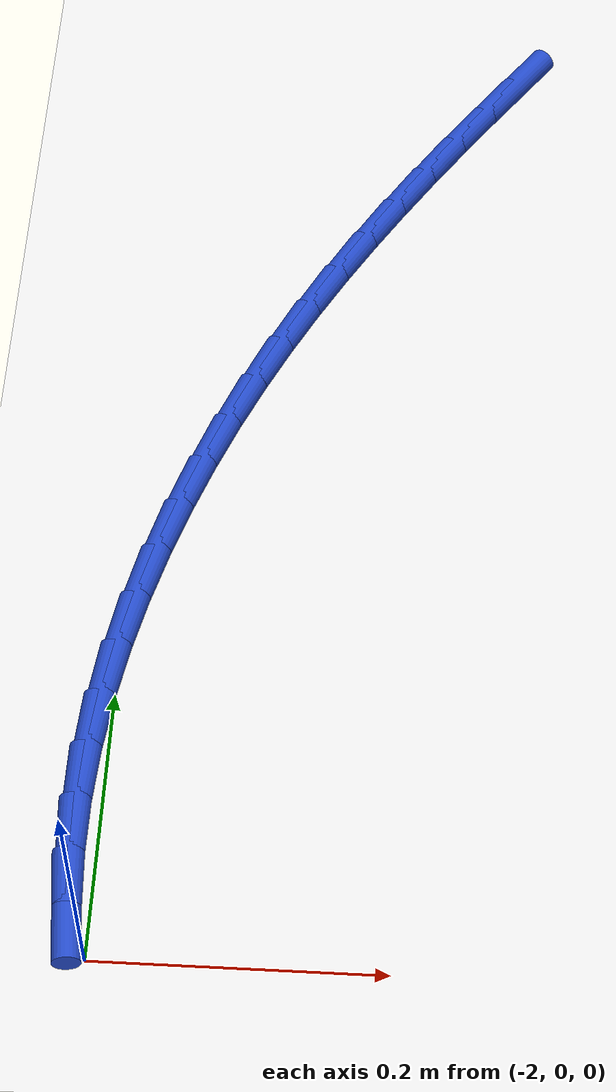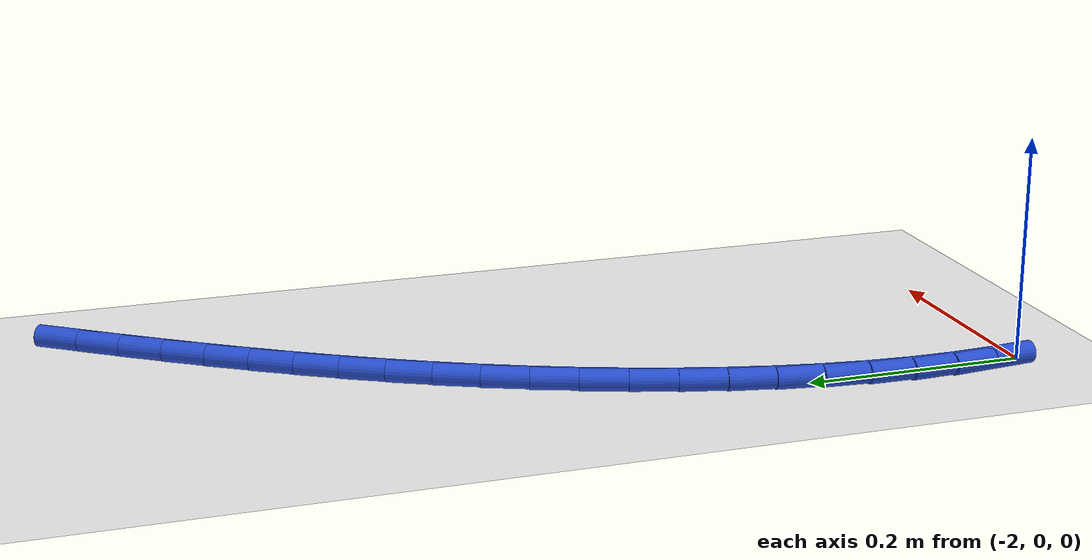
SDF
<sdf version="1.6">
 <world name="default">
  <model name="ground_plane">
   <static>1</static>
   <link name="link">
    <collision name="collision">
     <geometry><plane><normal>0 0 1</normal><size>100 100</size></plane></geometry>
     <surface><friction><ode><mu>100</mu><mu2>50</mu2></ode></friction></surface>
    </collision>
    <visual name="visual">
     <cast_shadows>0</cast_shadows>
     <geometry><plane><normal>0 0 1</normal><size>100 100</size></plane></geometry>
     <material>
      <script><uri>file://media/materials/scripts/gazebo.material</uri><name>Gazebo/WhiteGlow</name></script>
     </material>
    </visual>
   </link>
  </model>
  <model name="line">
   <link name="link_59">
    <pose>-1.7266454813526415 0.785578040407122 0.01 0 1.57 0.9463329965080772</pose>
    <collision name="collision">
     <geometry><cylinder><radius>0.01</radius><length>0.08</length></cylinder></geometry>
    </collision>
    <visual name="visual">
     <material>
      <script><name>Gazebo/Blue</name><uri>file://media/materials/scripts/gazebo.material</uri></script>
     </material>
     <geometry><cylinder><radius>0.01</radius><length>0.08</length></cylinder></geometry>
    </visual>
   </link>
   <link name="link_60">
    <pose>-1.7512228388067657 0.7514744967652388 0.01 0 1.57 0.9586693720810079</pose>
    <collision name="collision">
     <geometry><cylinder><radius>0.01</radius><length>0.08</length></cylinder></geometry>
    </collision>
    <visual name="visual">
     <material>
      <script><name>Gazebo/Blue</name><uri>file://media/materials/scripts/gazebo.material</uri></script>
     </material>
     <geometry><cylinder><radius>0.01</radius><length>0.08</length></cylinder></geometry>
    </visual>
   </link>
   <link name="link_61">
    <pose>-1.7751911353999055 0.7173359778144072 0.01 0 1.57 0.9732770989073142</pose>
    <collision name="collision">
     <geometry><cylinder><radius>0.01</radius><length>0.08</length></cylinder></geometry>
    </collision>
    <visual name="visual">
     <material>
      <script><name>Gazebo/Blue</name><uri>file://media/materials/scripts/gazebo.material</uri></script>
     </material>
     <geometry><cylinder><radius>0.01</radius><length>0.08</length></cylinder></geometry>
    </visual>
   </link>
   <link name="link_62">
    <pose>-1.798494183957913 0.6830920230691159 0.01 0 1.57 0.990638955249911</pose>
    <collision name="collision">
     <geometry><cylinder><radius>0.01</radius><length>0.08</length></cylinder></geometry>
    </collision>
    <visual name="visual">
     <material>
      <script><name>Gazebo/Blue</name><uri>file://media/materials/scripts/gazebo.material</uri></script>
     </material>
     <geometry><cylinder><radius>0.01</radius><length>0.08</length></cylinder></geometry>
    </visual>
   </link>
   <link name="link_63">
    <pose>-1.8210668017229703 0.6486506967566651 0.01 0 1.57 1.010741564695442</pose>
    <collision name="collision">
     <geometry><cylinder><radius>0.01</radius><length>0.08</length></cylinder></geometry>
    </collision>
    <visual name="visual">
     <material>
      <script><name>Gazebo/Blue</name><uri>file://media/materials/scripts/gazebo.material</uri></script>
     </material>
     <geometry><cylinder><radius>0.01</radius><length>0.08</length></cylinder></geometry>
    </visual>
   </link>
   <link name="link_64">
    <pose>-1.842843805937259 0.6139200631043558 0.01 0 1.57 1.0335432675178449</pose>
    <collision name="collision">
     <geometry><cylinder><radius>0.01</radius><length>0.08</length></cylinder></geometry>
    </collision>
    <visual name="visual">
     <material>
      <script><name>Gazebo/Blue</name><uri>file://media/materials/scripts/gazebo.material</uri></script>
     </material>
     <geometry><cylinder><radius>0.01</radius><length>0.08</length></cylinder></geometry>
    </visual>
   </link>
   <link name="link_65">
    <pose>-1.86376001384296 0.578808186339488 0.01 0 1.57 1.0589698647585044</pose>
    <collision name="collision">
     <geometry><cylinder><radius>0.01</radius><length>0.08</length></cylinder></geometry>
    </collision>
    <visual name="visual">
     <material>
      <script><name>Gazebo/Blue</name><uri>file://media/materials/scripts/gazebo.material</uri></script>
     </material>
     <geometry><cylinder><radius>0.01</radius><length>0.08</length></cylinder></geometry>
    </visual>
   </link>
   <link name="link_66">
    <pose>-1.8837502426822552 0.5432231306893622 0.01 0 1.57 1.086910783392453</pose>
    <collision name="collision">
     <geometry><cylinder><radius>0.01</radius><length>0.08</length></cylinder></geometry>
    </collision>
    <visual name="visual">
     <material>
      <script><name>Gazebo/Blue</name><uri>file://media/materials/scripts/gazebo.material</uri></script>
     </material>
     <geometry><cylinder><radius>0.01</radius><length>0.08</length></cylinder></geometry>
    </visual>
   </link>
   <link name="link_67">
    <pose>-1.9027493096973278 0.5070729603812798 0.01 0 1.57 1.1172161411557868</pose>
    <collision name="collision">
     <geometry><cylinder><radius>0.01</radius><length>0.08</length></cylinder></geometry>
    </collision>
    <visual name="visual">
     <material>
      <script><name>Gazebo/Blue</name><uri>file://media/materials/scripts/gazebo.material</uri></script>
     </material>
     <geometry><cylinder><radius>0.01</radius><length>0.08</length></cylinder></geometry>
    </visual>
   </link>
   <link name="link_68">
    <pose>-1.920692032130357 0.4702657396425401 0.01 0 1.57 1.149695234886255</pose>
    <collision name="collision">
     <geometry><cylinder><radius>0.01</radius><length>0.08</length></cylinder></geometry>
    </collision>
    <visual name="visual">
     <material>
      <script><name>Gazebo/Blue</name><uri>file://media/materials/scripts/gazebo.material</uri></script>
     </material>
     <geometry><cylinder><radius>0.01</radius><length>0.08</length></cylinder></geometry>
    </visual>
   </link>
   <link name="link_69">
    <pose>-1.9375132272235256 0.43270953270044465 0.01 0 1.57 1.1841154487596448</pose>
    <collision name="collision">
     <geometry><cylinder><radius>0.01</radius><length>0.08</length></cylinder></geometry>
    </collision>
    <visual name="visual">
     <material>
      <script><name>Gazebo/Blue</name><uri>file://media/materials/scripts/gazebo.material</uri></script>
     </material>
     <geometry><cylinder><radius>0.01</radius><length>0.08</length></cylinder></geometry>
    </visual>
   </link>
   <link name="link_70">
    <pose>-1.9531452850895212 0.39431853015060836 0.01 0 1.57 1.2203140845607783</pose>
    <collision name="collision">
     <geometry><cylinder><radius>0.01</radius><length>0.08</length></cylinder></geometry>
    </collision>
    <visual name="visual">
     <material>
      <script><name>Gazebo/Blue</name><uri>file://media/materials/scripts/gazebo.material</uri></script>
     </material>
     <geometry><cylinder><radius>0.01</radius><length>0.08</length></cylinder></geometry>
    </visual>
   </link>
   <link name="link_71">
    <pose>-1.9674692486547496 0.35513652909536164 0.01 0 1.57 1.258585240429816</pose>
    <collision name="collision">
     <geometry><cylinder><radius>0.01</radius><length>0.08</length></cylinder></geometry>
    </collision>
    <visual name="visual">
     <material>
      <script><name>Gazebo/Blue</name><uri>file://media/materials/scripts/gazebo.material</uri></script>
     </material>
     <geometry><cylinder><radius>0.01</radius><length>0.08</length></cylinder></geometry>
    </visual>
   </link>
   <link name="link_72">
    <pose>-1.9803171840982203 0.3153309498693828 0.01 0 1.57 1.2993981332020452</pose>
    <collision name="collision">
     <geometry><cylinder><radius>0.01</radius><length>0.08</length></cylinder></geometry>
    </collision>
    <visual name="visual">
     <material>
      <script><name>Gazebo/Blue</name><uri>file://media/materials/scripts/gazebo.material</uri></script>
     </material>
     <geometry><cylinder><radius>0.01</radius><length>0.08</length></cylinder></geometry>
    </visual>
   </link>
   <link name="link_73">
    <pose>-1.991519204889255 0.2750741416827151 0.01 0 1.57 1.3432520740090117</pose>
    <collision name="collision">
     <geometry><cylinder><radius>0.01</radius><length>0.08</length></cylinder></geometry>
    </collision>
    <visual name="visual">
     <material>
      <script><name>Gazebo/Blue</name><uri>file://media/materials/scripts/gazebo.material</uri></script>
     </material>
     <geometry><cylinder><radius>0.01</radius><length>0.08</length></cylinder></geometry>
    </visual>
   </link>
   <link name="link_74">
    <pose>-2.0009054244971742 0.23453845374540314 0.01 0 1.57 1.3906799498544182</pose>
    <collision name="collision">
     <geometry><cylinder><radius>0.01</radius><length>0.08</length></cylinder></geometry>
    </collision>
    <visual name="visual">
     <material>
      <script><name>Gazebo/Blue</name><uri>file://media/materials/scripts/gazebo.material</uri></script>
     </material>
     <geometry><cylinder><radius>0.01</radius><length>0.08</length></cylinder></geometry>
    </visual>
   </link>
   <link name="link_75">
    <pose>-2.0083059563912977 0.19389623526749064 0.01 0 1.57 1.442247827732246</pose>
    <collision name="collision">
     <geometry><cylinder><radius>0.01</radius><length>0.08</length></cylinder></geometry>
    </collision>
    <visual name="visual">
     <material>
      <script><name>Gazebo/Blue</name><uri>file://media/materials/scripts/gazebo.material</uri></script>
     </material>
     <geometry><cylinder><radius>0.01</radius><length>0.08</length></cylinder></geometry>
    </visual>
   </link>
   <link name="link_76">
    <pose>-2.0135509140409464 0.1533198354590212 0.01 0 1.57 1.498546873659196</pose>
    <collision name="collision">
     <geometry><cylinder><radius>0.01</radius><length>0.08</length></cylinder></geometry>
    </collision>
    <visual name="visual">
     <material>
      <script><name>Gazebo/Blue</name><uri>file://media/materials/scripts/gazebo.material</uri></script>
     </material>
     <geometry><cylinder><radius>0.01</radius><length>0.08</length></cylinder></geometry>
    </visual>
   </link>
   <link name="link_77">
    <pose>-2.0164704109154417 0.11298160353003958 0.01 0 1.57 1.5600231100559157</pose>
    <collision name="collision">
     <geometry><cylinder><radius>0.01</radius><length>0.08</length></cylinder></geometry>
    </collision>
    <visual name="visual">
     <material>
      <script><name>Gazebo/Blue</name><uri>file://media/materials/scripts/gazebo.material</uri></script>
     </material>
     <geometry><cylinder><radius>0.01</radius><length>0.08</length></cylinder></geometry>
    </visual>
   </link>
   <link name="link_78">
    <pose>-2.016900619123803 0.07305002366688354 0.01 0 1.57 -1.5200040323658288</pose>
    <collision name="collision">
     <geometry><cylinder><radius>0.01</radius><length>0.08</length></cylinder></geometry>
    </collision>
    <visual name="visual">
     <material>
      <script><name>Gazebo/Blue</name><uri>file://media/materials/scripts/gazebo.material</uri></script>
     </material>
     <geometry><cylinder><radius>0.01</radius><length>0.08</length></cylinder></geometry>
    </visual>
   </link>
   <link name="link_79">
    <pose>-2.014892915125048 0.03355629347750475 0.01 0 1.57 -1.4659188262807188</pose>
    <collision name="collision">
     <geometry><cylinder><radius>0.01</radius><length>0.08</length></cylinder></geometry>
    </collision>
    <visual name="visual">
     <material>
      <script><name>Gazebo/Blue</name><uri>file://media/materials/scripts/gazebo.material</uri></script>
     </material>
     <geometry><cylinder><radius>0.01</radius><length>0.08</length></cylinder></geometry>
    </visual>
   </link>
  </model>
 </world>
</sdf>
